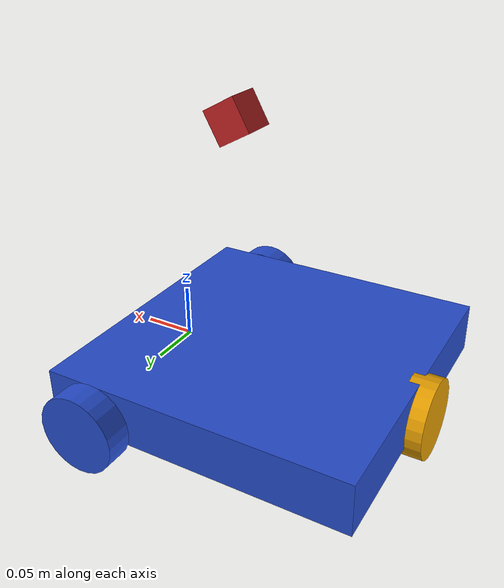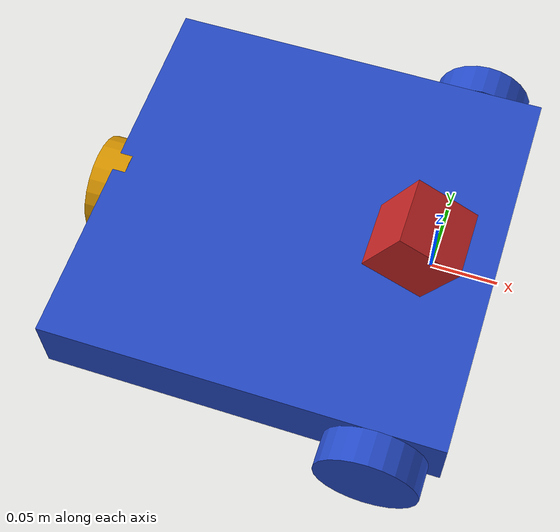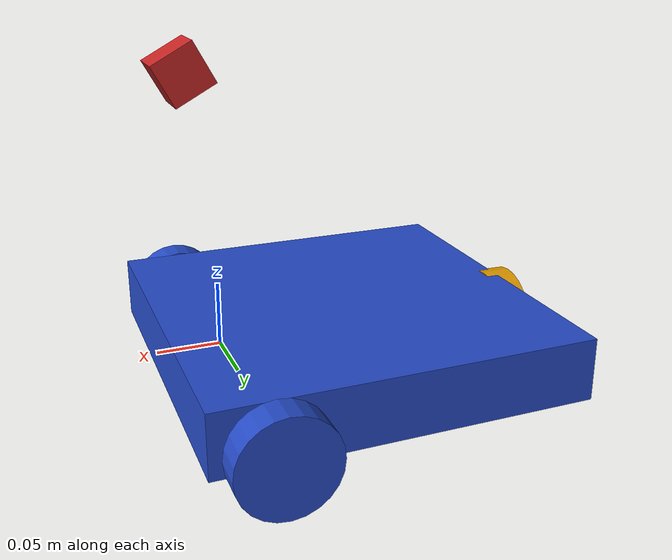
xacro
<?xml version="1.0" ?>
<robot name="autonet_v1"
  xmlns:xacro="http://www.ros.org/wiki/xacro">

  <xacro:include filename="$(find autonet_sim)/urdf/materials.xacro" />
  <xacro:include filename="$(find autonet_sim)/urdf/autonet_v1.gazebo" />
  <xacro:include filename="$(find autonet_sim)/urdf/macros.xacro" />

  <link name="base_link">
    <!-- pose and inertial -->
    <pose>-0.1 0 0.05 0 0 0</pose>
    <inertial>
      <mass value="0.5"/>
      <origin rpy="0 0 0" xyz="-0.1 0 0.05"/>
      <inertia ixx="0.206208333333" ixy="0" ixz="0" iyy="0.206208333333" iyz="0" izz="0.206208333333"/>
    </inertial>
    <!-- body -->
    <collision name="collision_chassis">
      <geometry>
        <box size="0.295 0.295 0.05"/>
      </geometry>
    </collision>
    <visual>
      <origin rpy="0 0 0" xyz="-0.1 0 0"/>
      <geometry>
        <box size="0.295 0.295 0.05"/>
      </geometry>
      <material name="blue"/>
    </visual>
    <!-- caster front -->
    <collision name="caster_front_collision">]
      <origin rpy="0 1.5707 0" xyz="0.05 0 -0.012"/>
      <geometry>
        <cylinder length="0.025" radius="0.038"/>
      </geometry>
      <surface>
        <friction>
          <ode>
            <mu>0</mu>
            <mu2>0</mu2>
            <slip1>1.0</slip1>
            <slip2>1.0</slip2>
          </ode>
        </friction>
      </surface>
    </collision>
    <collision name="caster_back_collision">]
      <origin rpy="0 1.5707 0" xyz="-0.25 0 -0.012"/>
      <geometry>
        <cylinder length="0.025" radius="0.038"/>
      </geometry>
      <surface>
        <friction>
          <ode>
            <mu>0</mu>
            <mu2>0</mu2>
            <slip1>1.0</slip1>
            <slip2>1.0</slip2>
          </ode>
        </friction>
      </surface>
    </collision>
    <visual name="caster_back_visual">
      <origin rpy="0 1.5707 0" xyz="-0.25 0 -0.012"/>
      <geometry>
        <cylinder length="0.025" radius="0.038"/>
      </geometry>
    </visual>
  </link>

  <xacro:link_wheel name="link_right_wheel" />
  <xacro:joint_wheel name="joint_right_wheel" child="link_right_wheel" origin_xyz="0 0.16 -0.012" />

  <xacro:link_wheel name="link_left_wheel" />
  <xacro:joint_wheel name="joint_left_wheel" child="link_left_wheel" origin_xyz="0 -0.16 -0.012" />

  <joint name="camera_joint" type="fixed">
    <axis xyz="0 1 0" />
    <origin xyz="0 -0.1 0.2" rpy="0 0.5 0"/>
    <parent link="base_link"/>
    <child link="camera1_link"/>
  </joint>

  <!-- Camera -->
  <link name="camera1_link">
    <collision>
      <origin xyz="0 0 0" rpy="0 0 0"/>
      <geometry>
        <box size="0.04 0.04 0.04"/>
      </geometry>
    </collision>

    <visual>
      <origin xyz="0 0 0" rpy="0 0 0"/>
      <geometry>
        <box size="0.04 0.04 0.04"/>
      </geometry>
      <material name="red"/>
    </visual>

    <inertial>
      <mass value="1e-5" />
      <origin xyz="0 0 0" rpy="0 0 0"/>
      <inertia ixx="1e-6" ixy="0" ixz="0" iyy="1e-6" iyz="0" izz="1e-6" />
    </inertial>
  </link>

  <gazebo reference="camera1_link">
    <sensor type="camera" name="camera1">
      <update_rate>30.0</update_rate>
      <camera name="head">
        <horizontal_fov>1.2262634</horizontal_fov>
        <image>
          <width>640</width>
          <height>480</height>
          <format>R8G8B8</format>
        </image>
        <clip>
          <near>0.02</near>
          <far>300</far>
        </clip>
        <noise>
          <type>gaussian</type>
          <!-- Noise is sampled independently per pixel on each frame.
               That pixel's noise value is added to each of its color
               channels, which at that point lie in the range [0,1]. -->
          <mean>0.0</mean>
          <stddev>0.007</stddev>
        </noise>
      </camera>
      <plugin name="camera_controller" filename="libgazebo_ros_camera.so">
        <alwaysOn>true</alwaysOn>
        <updateRate>0.0</updateRate>
        <cameraName>camera1</cameraName>
        <imageTopicName>image_raw</imageTopicName>
        <cameraInfoTopicName>camera_info</cameraInfoTopicName>
        <frameName>/camera1_link</frameName>
        <hackBaseline>0.07</hackBaseline>
        <distortionK1>0.0</distortionK1>
        <distortionK2>0.0</distortionK2>
        <distortionK3>0.0</distortionK3>
        <distortionT1>0.0</distortionT1>
        <distortionT2>0.0</distortionT2>
      </plugin>
    </sensor>
  </gazebo>
</robot>

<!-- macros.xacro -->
<robot xmlns:xacro="http://www.ros.org/wiki/xacro">
    <xacro:macro name="link_wheel" params="name">
        <link name="${name}">
            <inertial>
              <mass value="0.2"/>
              <origin rpy="0 1.5707 1.5707" xyz="0 0 0"/>
              <inertia ixx="0.000526666666667" ixy="0" ixz="0" iyy="0.000526666666667" iyz="0" izz="0.001"/>
            </inertial>
            <collision name="link_${name}_wheel_collision">
              <origin rpy="0 1.5707 1.5707" xyz="0 0 0"/>
              <geometry>
                <cylinder length="0.025" radius="0.038"/>
              </geometry>
            </collision>
            <visual name="${name}_visual">
              <origin rpy="0 1.5707 1.5707" xyz="0 0 0"/>
              <geometry>
                <cylinder length="0.025" radius="0.038"/>
              </geometry>
            </visual>
        </link>
    </xacro:macro>

    <xacro:macro name="joint_wheel" params="name child origin_xyz">
      <joint name="${name}" type="continuous">
        <origin rpy="0 0 0" xyz="${origin_xyz}"/>
        <child link="${child}"/>
        <parent link="base_link"/>
        <axis rpy="0 0 0" xyz="0 1 0"/>
        <limit effort="10000" velocity="1000"/>
        <joint_properties damping="0" friction="0"/>
      </joint>
    </xacro:macro>

    <xacro:macro name="cylinder_inertia" params="mass r l">
      <inertia  ixx="${mass*(3*r*r+l*l)/12}" ixy = "0" ixz = "0"
                iyy="${mass*(3*r*r+l*l)/12}" iyz = "0"
                izz="${mass*(r*r)/2}" />
    </xacro:macro>
</robot>
